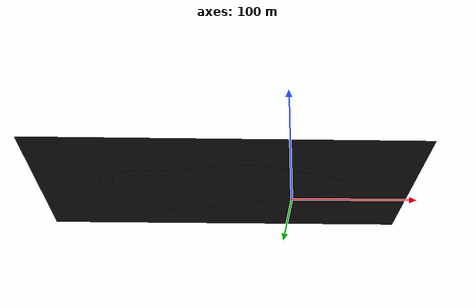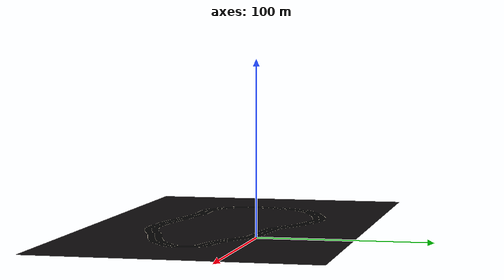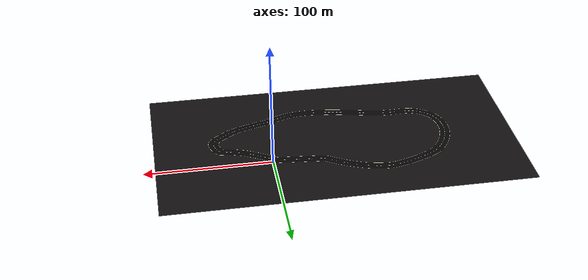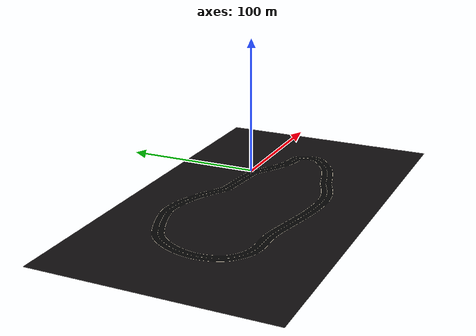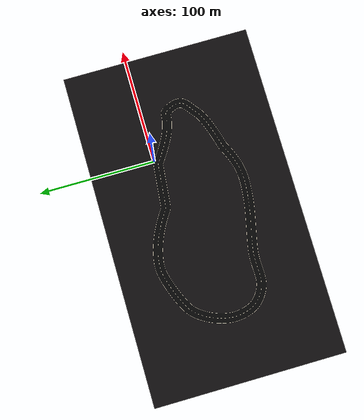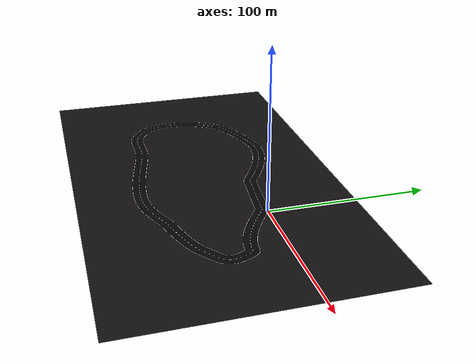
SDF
<sdf version="1.6">
  <model name="race_track">
    <link name="race_track_link">
      <pose frame="">0 0 0 0 -0 0</pose>
      <self_collide>0</self_collide>
      <kinematic>0</kinematic>
      <gravity>1</gravity>
      <inertial>
        <mass>1</mass>
        <pose frame="">0 0 0 0 -0 0</pose>
        <inertia>
          <ixx>1</ixx>
          <ixy>0</ixy>
          <ixz>0</ixz>
          <iyy>1</iyy>
          <iyz>0</iyz>
          <izz>1</izz>
        </inertia>
      </inertial>
      <visual name="race_track_visual">
        <geometry>
          <mesh>
            <uri>package://avisengine_environment/meshes/mesh_road.dae</uri>
          </mesh>
        </geometry>
        <pose frame="">0 0 0 0 -0 0</pose>
        <cast_shadows>1</cast_shadows>
        <transparency>0</transparency>
        <material>
          <shader type="vertex">
            <normal_map>__default__</normal_map>
          </shader>
        </material>
      </visual>
      <collision name="race_track_collision">
        <laser_retro>0</laser_retro>
        <max_contacts>10</max_contacts>
        <pose frame="">0 0 0 0 -0 0</pose>
        <geometry>
          <mesh>
            <uri>package://avisengine_environment/meshes/mesh_road.dae</uri>
          </mesh>
        </geometry>
        <surface>
          <friction>
            <ode>
              <mu>1</mu>
              <mu2>1</mu2>
              <fdir1>0 0 0</fdir1>
              <slip1>0</slip1>
              <slip2>0</slip2>
            </ode>
            <torsional>
              <coefficient>1</coefficient>
              <patch_radius>0</patch_radius>
              <surface_radius>0</surface_radius>
              <use_patch_radius>1</use_patch_radius>
              <ode>
                <slip>0</slip>
              </ode>
            </torsional>
          </friction>
          <bounce>
            <restitution_coefficient>0</restitution_coefficient>
            <threshold>1e+06</threshold>
          </bounce>
          <contact>
            <collide_without_contact>0</collide_without_contact>
            <collide_without_contact_bitmask>1</collide_without_contact_bitmask>
            <collide_bitmask>1</collide_bitmask>
            <ode>
              <soft_cfm>0</soft_cfm>
              <soft_erp>0.2</soft_erp>
              <kp>1e+13</kp>
              <kd>1</kd>
              <max_vel>0.01</max_vel>
              <min_depth>0</min_depth>
            </ode>
            <bullet>
              <split_impulse>1</split_impulse>
              <split_impulse_penetration_threshold>-0.01</split_impulse_penetration_threshold>
              <soft_cfm>0</soft_cfm>
              <soft_erp>0.2</soft_erp>
              <kp>1e+13</kp>
              <kd>1</kd>
            </bullet>
          </contact>
        </surface>
      </collision>
    </link>
    <static>1</static>
    <allow_auto_disable>1</allow_auto_disable>
  </model>
</sdf>
